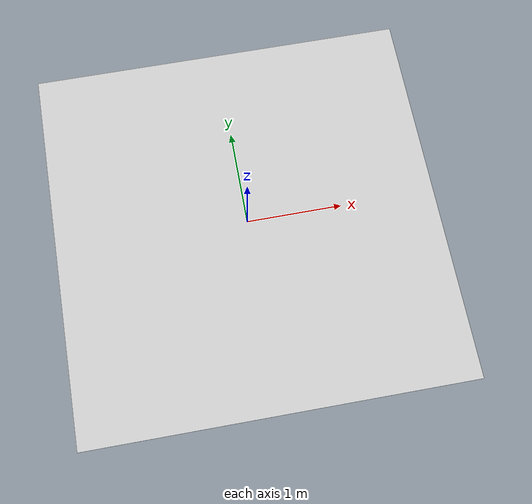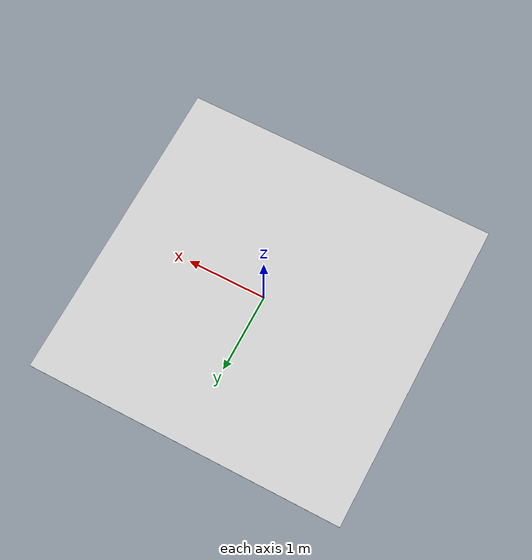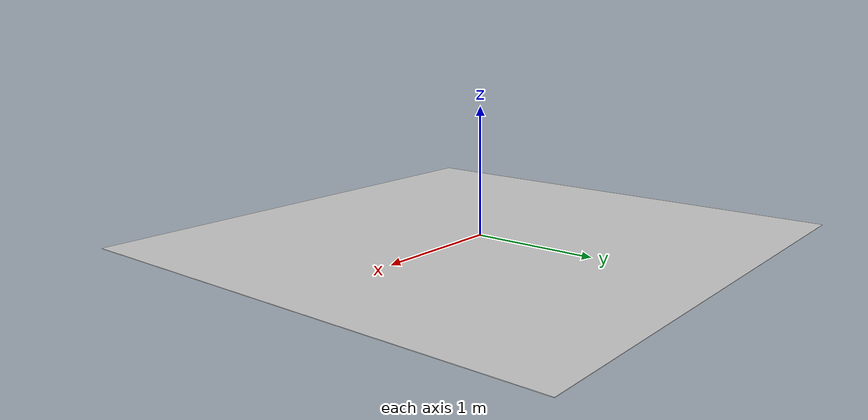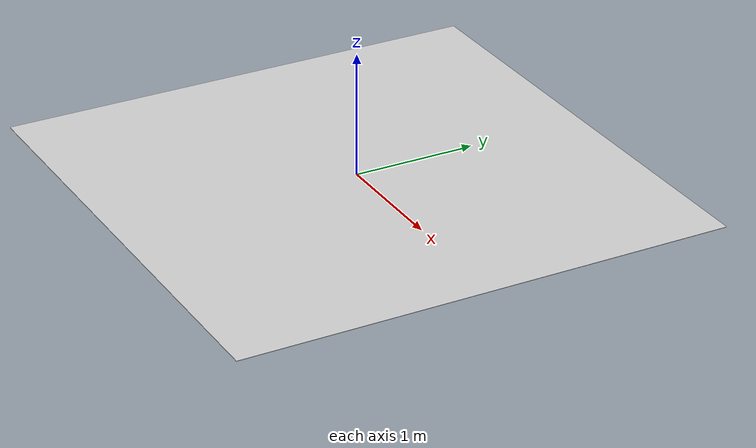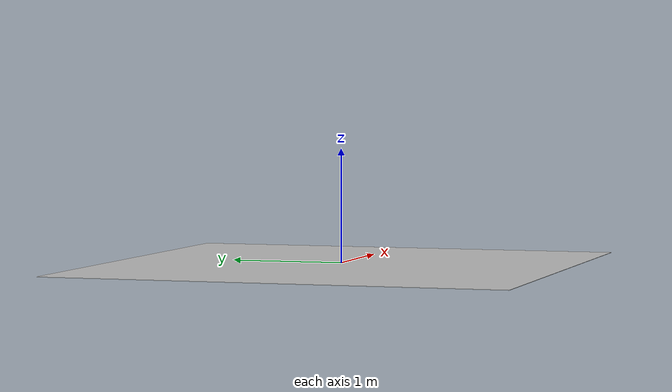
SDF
<?xml version='1.0'?>
<sdf version="1.9">

  <model name="r2_shapes">
    <static>0</static>
    <link name="link">
      <collision name="collision">
        <geometry>
          <plane>
            <normal>0 0 1</normal>
          </plane>
        </geometry>
      </collision>

      <visual name="shapes">
        <pose>0 0 -0.01 0 0 0</pose>
        <cast_shadows>false</cast_shadows>
        <geometry>
            <plane>
                <normal>0 0 1</normal>
                <size>4 4</size>
            </plane>
            <material>
                <ambient>0.8 0.8 0.8 1</ambient>
                <diffuse>0.8 0.8 0.8 1</diffuse>
                <specular>0.1 0.1 0.1 1</specular>
                <pbr>
                  <metal>
                    <albedo_map>materials/textures/shapes1.png</albedo_map>
                    <roughness>0.6</roughness>
                    <metalness>0</metalness>
                  </metal>
                </pbr>
              </material>
        </geometry>
        <material>
          <ambient>0.8 0.8 0.8 1</ambient>
          <diffuse>0.8 0.8 0.8 1</diffuse>
          <specular>0.1 0.1 0.1 1</specular>
        </material>
      </visual>

    </link>
  </model>

</sdf>
